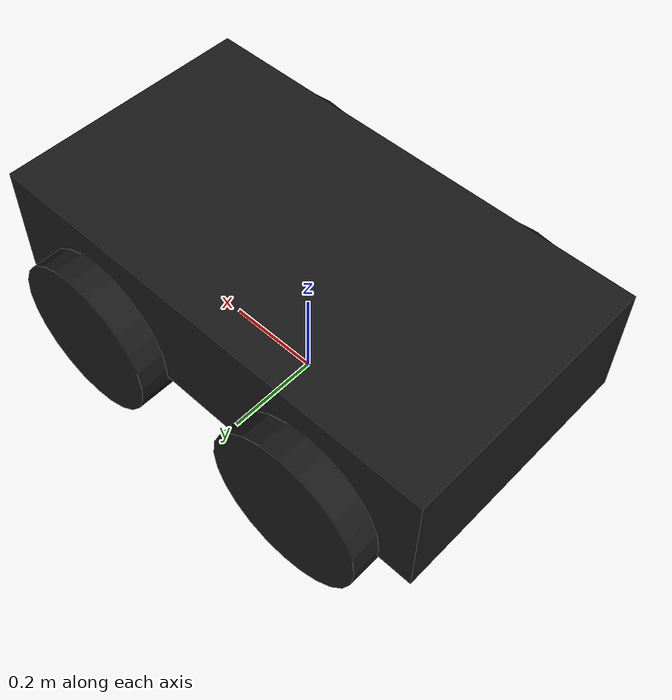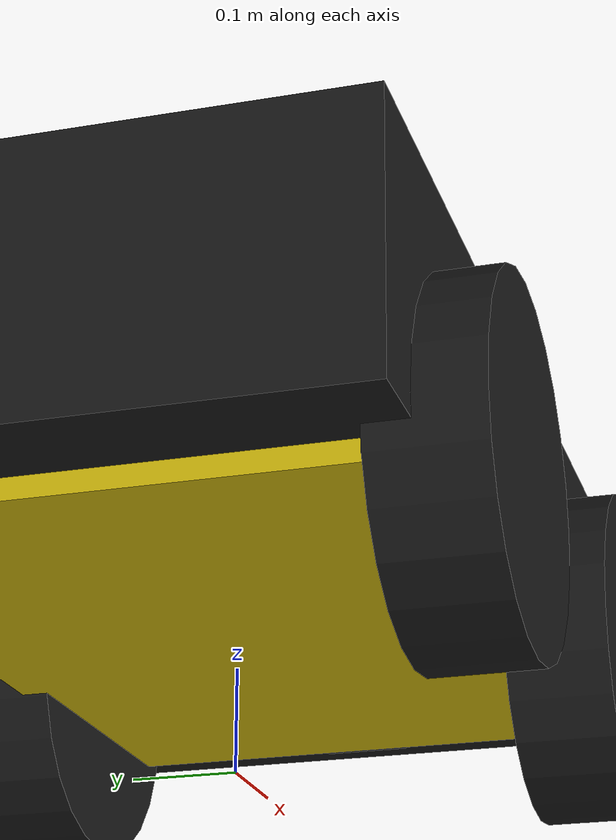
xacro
<?xml version="1.0"?>
<robot xmlns:xacro="http://ros.org/wiki/xacro" name="husky">

  <xacro:property name="PI" value="3.14159265359"/>

  <!-- ============ Chassis dimensions (Husky A200) ============ -->
  <xacro:property name="base_x"       value="0.99"/>
  <xacro:property name="base_y"       value="0.55"/>
  <xacro:property name="base_z"       value="0.25"/>
  <xacro:property name="wheel_radius" value="0.165"/>
  <xacro:property name="wheel_width"  value="0.10"/>
  <xacro:property name="wheel_xoff"   value="0.26"/>
  <xacro:property name="wheel_yoff"   value="0.285"/>

  <material name="husky_yellow"><color rgba="0.85 0.75 0.05 1.0"/></material>
  <material name="husky_dark">  <color rgba="0.10 0.10 0.10 1.0"/></material>
  <material name="rs_grey">     <color rgba="0.30 0.30 0.30 1.0"/></material>

  <!-- ============ Footprint / base ============ -->
  <link name="base_footprint"/>

  <joint name="base_joint" type="fixed">
    <parent link="base_footprint"/>
    <child  link="base_link"/>
    <origin xyz="0 0 ${wheel_radius}" rpy="0 0 0"/>
  </joint>

  <link name="base_link">
    <visual>
      <origin xyz="0 0 ${base_z/2 - 0.02}" rpy="0 0 0"/>
      <geometry><box size="${base_x} ${base_y} ${base_z}"/></geometry>
      <material name="husky_dark"/>
    </visual>
    <visual>
      <!-- yellow lower bumper block, evokes the Husky look -->
      <origin xyz="0.0 0 0.02" rpy="0 0 0"/>
      <geometry><box size="${base_x*0.8} ${base_y*0.95} 0.12"/></geometry>
      <material name="husky_yellow"/>
    </visual>
    <collision>
      <origin xyz="0 0 ${base_z/2 - 0.02}" rpy="0 0 0"/>
      <geometry><box size="${base_x} ${base_y} ${base_z}"/></geometry>
    </collision>
    <inertial>
      <mass value="33.0"/>
      <origin xyz="0 0 ${base_z/2}" rpy="0 0 0"/>
      <inertia ixx="1.5" ixy="0" ixz="0" iyy="2.5" iyz="0" izz="3.0"/>
    </inertial>
  </link>

  <!-- ============ Passive frictionless wheels ============ -->
  <xacro:macro name="wheel" params="name x y">
    <link name="${name}_wheel_link">
      <visual>
        <origin xyz="0 0 0" rpy="${PI/2} 0 0"/>
        <geometry><cylinder radius="${wheel_radius}" length="${wheel_width}"/></geometry>
        <material name="husky_dark"/>
      </visual>
      <collision>
        <origin xyz="0 0 0" rpy="${PI/2} 0 0"/>
        <geometry><cylinder radius="${wheel_radius}" length="${wheel_width}"/></geometry>
      </collision>
      <inertial>
        <mass value="2.5"/>
        <inertia ixx="0.02" ixy="0" ixz="0" iyy="0.02" iyz="0" izz="0.03"/>
      </inertial>
    </link>
    <!-- FIXED joints: wheels never actuated (planar_move drives the base),
         so no joint_state_publisher is required. -->
    <joint name="${name}_wheel_joint" type="fixed">
      <parent link="base_link"/>
      <child  link="${name}_wheel_link"/>
      <origin xyz="${x} ${y} 0" rpy="0 0 0"/>
    </joint>
    <gazebo reference="${name}_wheel_link">
      <mu1>0.0</mu1>
      <mu2>0.0</mu2>
      <material>Gazebo/Black</material>
    </gazebo>
  </xacro:macro>

  <xacro:wheel name="front_left"  x="${wheel_xoff}"  y="${wheel_yoff}"/>
  <xacro:wheel name="front_right" x="${wheel_xoff}"  y="${-wheel_yoff}"/>
  <xacro:wheel name="rear_left"   x="${-wheel_xoff}" y="${wheel_yoff}"/>
  <xacro:wheel name="rear_right"  x="${-wheel_xoff}" y="${-wheel_yoff}"/>

  <gazebo reference="base_link"><material>Gazebo/FlatBlack</material></gazebo>

  <!-- ============ Single RealSense D435, low & forward ============ -->
  <!-- camera body link -->
  <link name="camera_link">
    <visual>
      <origin xyz="0 0 0" rpy="0 0 0"/>
      <geometry><box size="0.025 0.090 0.025"/></geometry>
      <material name="rs_grey"/>
    </visual>
    <inertial>
      <mass value="0.072"/>
      <inertia ixx="1e-4" ixy="0" ixz="0" iyy="1e-4" iyz="0" izz="1e-4"/>
    </inertial>
  </link>

  <!-- low, forward, pitched ~15 deg down -->
  <joint name="camera_mount_joint" type="fixed">
    <parent link="base_link"/>
    <child  link="camera_link"/>
    <origin xyz="0.46 0 -0.005" rpy="0 0.26 0"/>
  </joint>

  <!-- optical frame: REP-103 (z forward, x right, y down) -->
  <link name="camera_depth_optical_frame"/>
  <joint name="camera_optical_joint" type="fixed">
    <parent link="camera_link"/>
    <child  link="camera_depth_optical_frame"/>
    <origin xyz="0 0 0" rpy="${-PI/2} 0 ${-PI/2}"/>
  </joint>

  <!-- Gazebo depth-camera sensor: RGB + depth + camera_info + organized cloud.
       ROS2 uses the unified gazebo_ros_camera plugin (auto-detects depth sensors). -->
  <gazebo reference="camera_link">
    <sensor type="depth" name="realsense_d435">
      <always_on>true</always_on>
      <update_rate>15.0</update_rate>
      <visualize>false</visualize>
      <camera name="realsense">
        <!-- D435 depth FOV ~ 87 x 58 deg -->
        <horizontal_fov>1.51843</horizontal_fov>
        <image>
          <width>640</width>
          <height>480</height>
          <format>R8G8B8</format>
        </image>
        <clip>
          <near>0.10</near>
          <far>10.0</far>
        </clip>
      </camera>
      <plugin name="realsense_plugin" filename="libgazebo_ros_camera.so">
        <!-- native topics (camera_name=camera, no namespace):
               /camera/image_raw, /camera/camera_info,
               /camera/depth/image_raw, /camera/depth/camera_info, /camera/points -->
        <camera_name>camera</camera_name>
        <frame_name>camera_depth_optical_frame</frame_name>
        <hack_baseline>0.07</hack_baseline>
        <min_depth>0.10</min_depth>
        <max_depth>10.0</max_depth>
      </plugin>
    </sensor>
  </gazebo>

  <!-- ============ Planar-move drive (odom source) ============ -->
  <gazebo>
    <plugin name="planar_move_drive" filename="libgazebo_ros_planar_move.so">
      <ros>
        <namespace>/</namespace>
        <remapping>cmd_vel:=cmd_vel</remapping>
        <remapping>odom:=odom</remapping>
      </ros>
      <update_rate>50</update_rate>
      <publish_rate>50</publish_rate>
      <odometry_frame>odom</odometry_frame>
      <robot_base_frame>base_footprint</robot_base_frame>
      <covariance_x>0.0001</covariance_x>
      <covariance_y>0.0001</covariance_y>
      <covariance_yaw>0.001</covariance_yaw>
      <publish_odom>true</publish_odom>
      <publish_odom_tf>true</publish_odom_tf>
    </plugin>
  </gazebo>

</robot>
